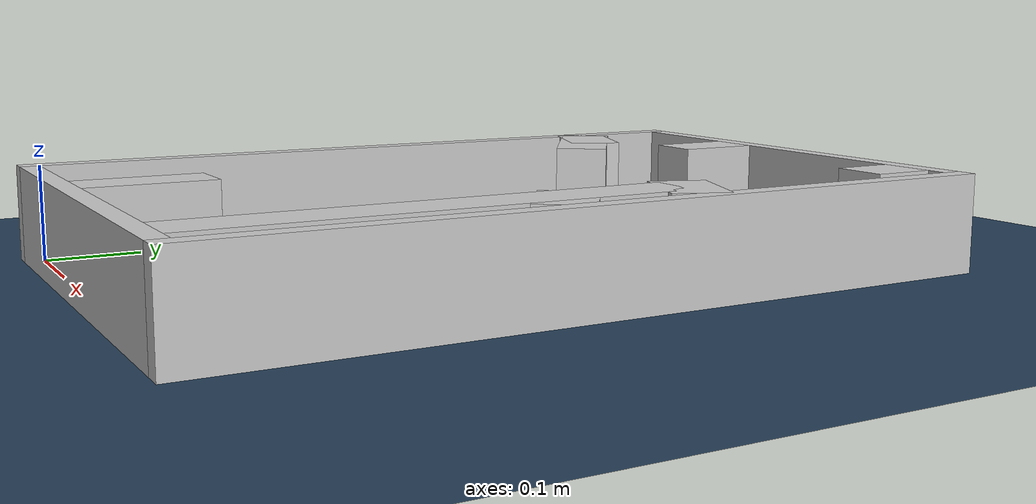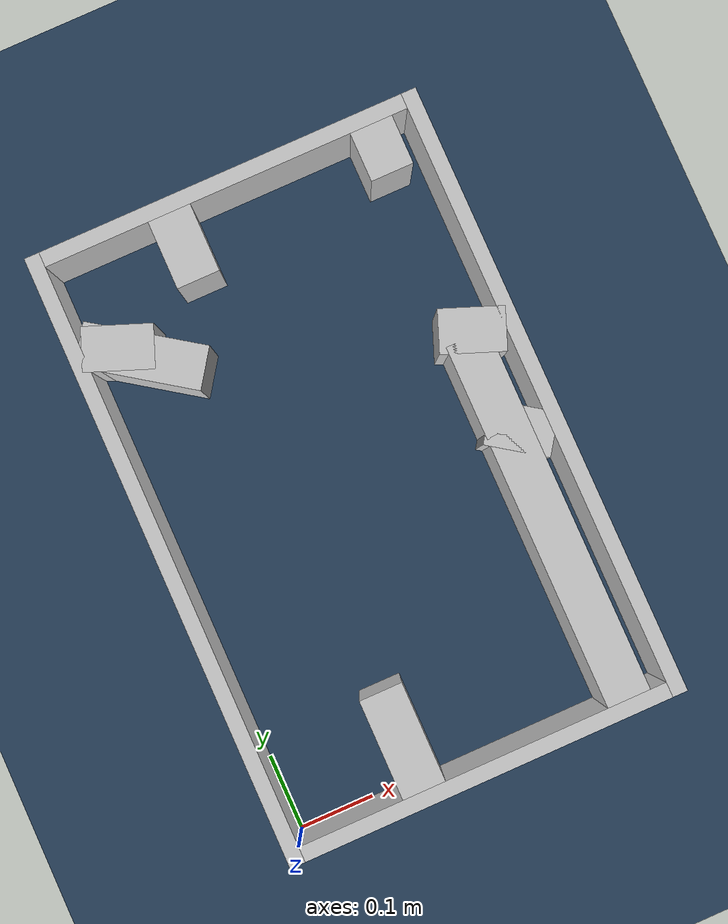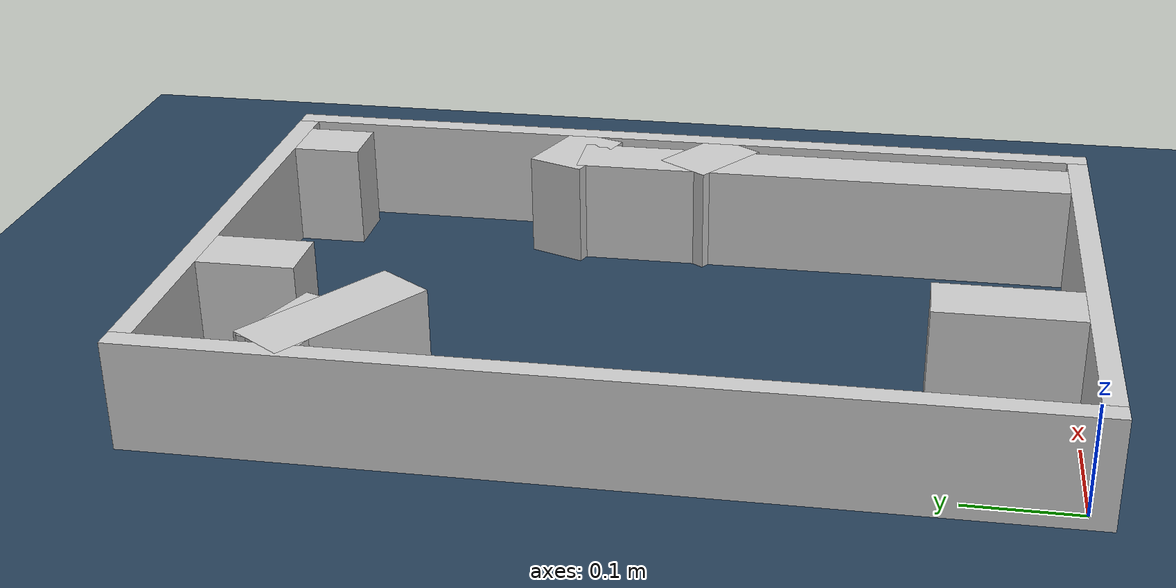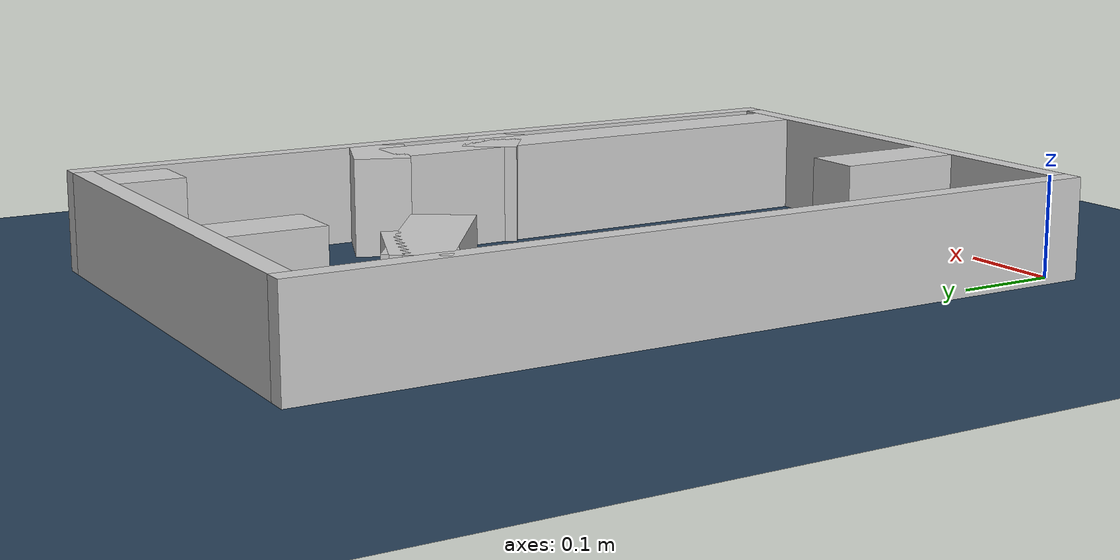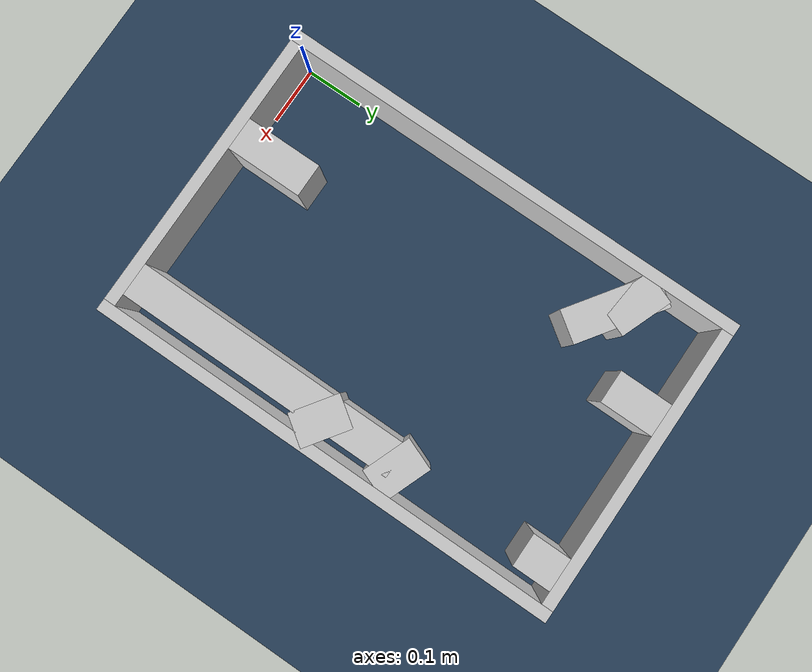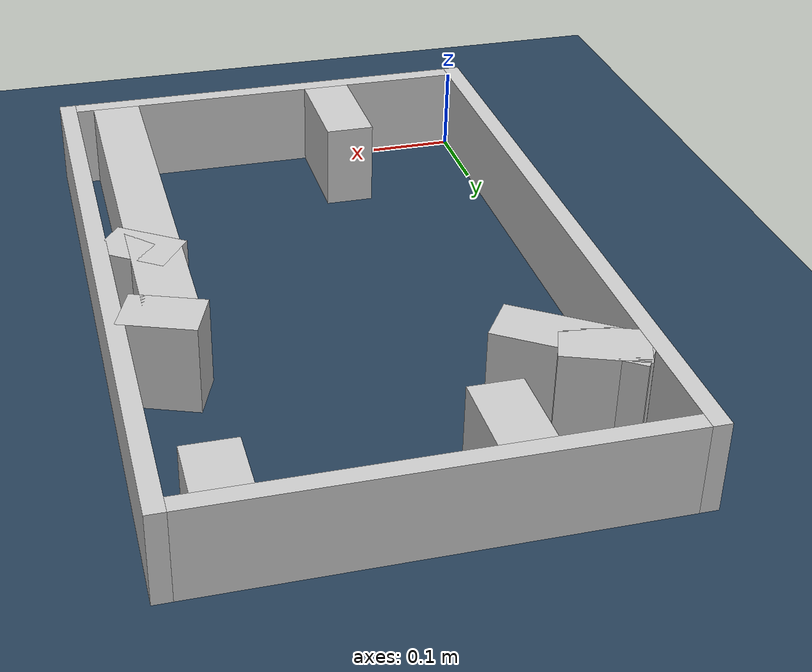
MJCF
<?xml version="1.0" ?>
<mujoco model="generated_real_template">
  <compiler angle="degree"/>
  <option timestep="0.002" integrator="implicitfast" iterations="100" cone="elliptic"/>
  <default>
    <geom density="1"/>
  </default>
  <asset>
    <texture builtin="gradient" height="3072" rgb1="0.3 0.5 0.7" rgb2="0 0 0" type="skybox" width="512"/>
    <texture builtin="checker" height="300" mark="edge" markrgb="0.8 0.8 0.8" name="groundplane" rgb1="0.2 0.3 0.4" rgb2="0.1 0.2 0.3" type="2d" width="300"/>
    <material name="groundplane" reflectance="0.2" texrepeat="5 5" texture="groundplane" texuniform="true"/>
  </asset>
  <worldbody>
    <light dir="0 0 -1" directional="true" pos="0 0 1.5"/>
    <geom name="floor" type="plane" condim="4" friction="0.5 0.005 0.001" material="groundplane" size="0 0 0.05"/>
    <body name="walls">
      <geom name="wall_boundary_left" type="box" condim="4" friction="1.0 0.005 0.0001" rgba="0.8 0.8 0.8 1" pos="-0.010000 0.387500 0.050000" euler="0 0 0.000000" size="0.010000 0.407500 0.050000"/>
      <geom name="wall_boundary_right" type="box" condim="4" friction="1.0 0.005 0.0001" rgba="0.8 0.8 0.8 1" pos="0.500000 0.387500 0.050000" euler="0 0 0.000000" size="0.010000 0.407500 0.050000"/>
      <geom name="wall_boundary_bottom" type="box" condim="4" friction="1.0 0.005 0.0001" rgba="0.8 0.8 0.8 1" pos="0.245000 -0.010000 0.050000" euler="0 0 0.000000" size="0.245000 0.010000 0.050000"/>
      <geom name="wall_boundary_top" type="box" condim="4" friction="1.0 0.005 0.0001" rgba="0.8 0.8 0.8 1" pos="0.245000 0.785000 0.050000" euler="0 0 0.000000" size="0.245000 0.010000 0.050000"/>
      <geom name="wall_inner_1_1" type="box" condim="4" friction="1.0 0.005 0.0001" rgba="0.8 0.8 0.8 1" pos="0.450674 0.489860 0.050000" euler="0 0 158.951195" size="0.042138 0.028500 0.050000"/>
      <geom name="wall_inner_1_2" type="box" condim="4" friction="1.0 0.005 0.0001" rgba="0.8 0.8 0.8 1" pos="0.042176 0.647067 0.050000" euler="0 0 158.951195" size="0.045191 0.028500 0.050000"/>
      <geom name="wall_inner_2_1" type="box" condim="4" friction="1.0 0.005 0.0001" rgba="0.8 0.8 0.8 1" pos="0.166837 0.065370 0.050000" euler="0 0 90.000000" size="0.065370 0.028500 0.050000"/>
      <geom name="wall_inner_2_2" type="box" condim="4" friction="1.0 0.005 0.0001" rgba="0.8 0.8 0.8 1" pos="0.166837 0.729559 0.050000" euler="0 0 90.000000" size="0.045441 0.028500 0.050000"/>
      <geom name="wall_inner_3_1" type="box" condim="4" friction="1.0 0.005 0.0001" rgba="0.8 0.8 0.8 1" pos="0.455451 0.354507 0.050000" euler="0 0 145.207009" size="0.042070 0.028500 0.050000"/>
      <geom name="wall_inner_3_2" type="box" condim="4" friction="1.0 0.005 0.0001" rgba="0.8 0.8 0.8 1" pos="0.065271 0.625619 0.050000" euler="0 0 145.207009" size="0.079481 0.028500 0.050000"/>
      <geom name="wall_inner_4_1" type="box" condim="4" friction="1.0 0.005 0.0001" rgba="0.8 0.8 0.8 1" pos="0.440431 0.241568 0.050000" euler="0 0 90.000000" size="0.241568 0.028500 0.050000"/>
      <geom name="wall_inner_4_2" type="box" condim="4" friction="1.0 0.005 0.0001" rgba="0.8 0.8 0.8 1" pos="0.440431 0.742132 0.050000" euler="0 0 90.000000" size="0.032868 0.028500 0.050000"/>
    </body>
  </worldbody>
</mujoco>
